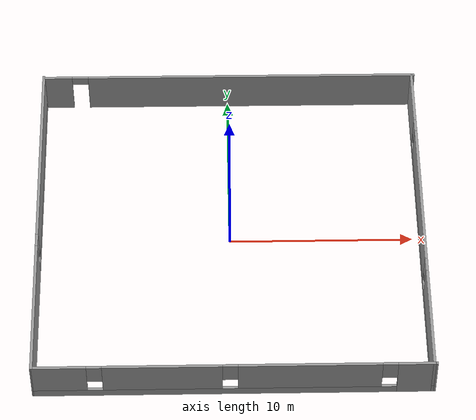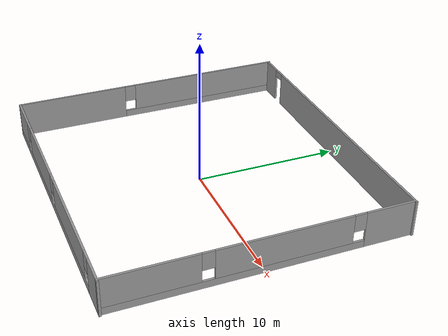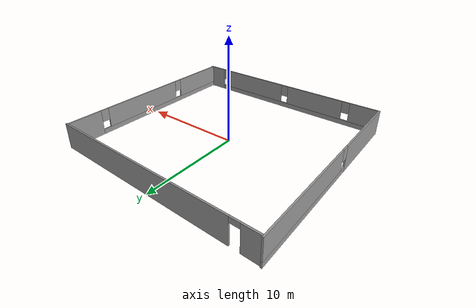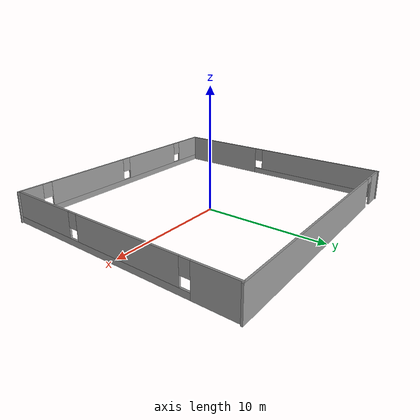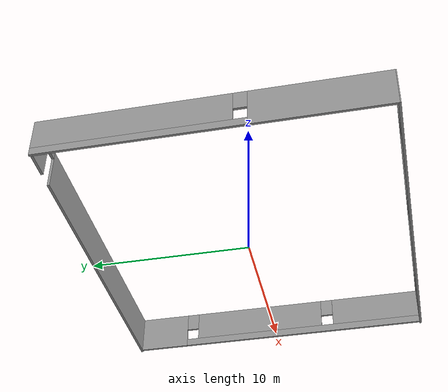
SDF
<?xml version='1.0'?>
<sdf version='1.7'>
  <model name='Mur_smart_resto'>
    <pose>0.070005 0.051909 0 0 -0 0</pose>
    <link name='Wall_10'>
      <pose>-10.4753 0.025889 0 0 -0 1.57063</pose>
      <visual name='Wall_10_Visual_0'>
        <pose>-6.06646 0 1.25 0 -0 0</pose>
        <geometry>
          <box>
            <size>7.99946 0.15 2.5</size>
          </box>
        </geometry>
        <material>
          <script>
            <uri>file://media/materials/scripts/gazebo.material</uri>
            <name>Gazebo/Grey</name>
          </script>
          <ambient>1 1 1 1</ambient>
        </material>
        <meta>
          <layer>0</layer>
        </meta>
      </visual>
      <collision name='Wall_10_Collision_0'>
        <geometry>
          <box>
            <size>7.99946 0.15 2.5</size>
          </box>
        </geometry>
        <pose>-6.06646 0 1.25 0 -0 0</pose>
      </collision>
      <visual name='Wall_10_Visual_1'>
        <pose>3.99973 0 0.25 0 -0 0</pose>
        <geometry>
          <box>
            <size>12.1329 0.15 0.5</size>
          </box>
        </geometry>
        <material>
          <script>
            <uri>file://media/materials/scripts/gazebo.material</uri>
            <name>Gazebo/Grey</name>
          </script>
          <ambient>1 1 1 1</ambient>
        </material>
        <meta>
          <layer>0</layer>
        </meta>
      </visual>
      <collision name='Wall_10_Collision_1'>
        <geometry>
          <box>
            <size>12.1329 0.15 0.5</size>
          </box>
        </geometry>
        <pose>3.99973 0 0.25 0 -0 0</pose>
      </collision>
      <visual name='Wall_10_Visual_2'>
        <pose>4.39973 0 1.5 0 -0 0</pose>
        <geometry>
          <box>
            <size>11.3329 0.15 2</size>
          </box>
        </geometry>
        <material>
          <script>
            <uri>file://media/materials/scripts/gazebo.material</uri>
            <name>Gazebo/Grey</name>
          </script>
          <ambient>1 1 1 1</ambient>
        </material>
        <meta>
          <layer>0</layer>
        </meta>
      </visual>
      <collision name='Wall_10_Collision_2'>
        <geometry>
          <box>
            <size>11.3329 0.15 2</size>
          </box>
        </geometry>
        <pose>4.39973 0 1.5 0 -0 0</pose>
      </collision>
      <visual name='Wall_10_Visual_3'>
        <pose>-1.66672 0 1.9 0 -0 0</pose>
        <geometry>
          <box>
            <size>0.8 0.15 1.2</size>
          </box>
        </geometry>
        <material>
          <script>
            <uri>file://media/materials/scripts/gazebo.material</uri>
            <name>Gazebo/Grey</name>
          </script>
          <ambient>1 1 1 1</ambient>
        </material>
        <meta>
          <layer>0</layer>
        </meta>
      </visual>
      <collision name='Wall_10_Collision_3'>
        <geometry>
          <box>
            <size>0.8 0.15 1.2</size>
          </box>
        </geometry>
        <pose>-1.66672 0 1.9 0 -0 0</pose>
      </collision>
    </link>
    <link name='Wall_7'>
      <pose>0.062174 9.88656 0 0 -0 -0.005133</pose>
      <visual name='Wall_7_Visual_0'>
        <pose>-9.71026 0 1.25 0 -0 0</pose>
        <geometry>
          <box>
            <size>1.55886 0.15 2.5</size>
          </box>
        </geometry>
        <material>
          <script>
            <uri>file://media/materials/scripts/gazebo.material</uri>
            <name>Gazebo/Grey</name>
          </script>
          <ambient>1 1 1 1</ambient>
        </material>
        <meta>
          <layer>0</layer>
        </meta>
      </visual>
      <collision name='Wall_7_Collision_0'>
        <geometry>
          <box>
            <size>1.55886 0.15 2.5</size>
          </box>
        </geometry>
        <pose>-9.71026 0 1.25 0 -0 0</pose>
      </collision>
      <visual name='Wall_7_Visual_1'>
        <pose>1.22943 0 1.25 0 -0 0</pose>
        <geometry>
          <box>
            <size>18.5205 0.15 2.5</size>
          </box>
        </geometry>
        <material>
          <script>
            <uri>file://media/materials/scripts/gazebo.material</uri>
            <name>Gazebo/Grey</name>
          </script>
          <ambient>1 1 1 1</ambient>
        </material>
        <meta>
          <layer>0</layer>
        </meta>
      </visual>
      <collision name='Wall_7_Collision_1'>
        <geometry>
          <box>
            <size>18.5205 0.15 2.5</size>
          </box>
        </geometry>
        <pose>1.22943 0 1.25 0 -0 0</pose>
      </collision>
      <visual name='Wall_7_Visual_2'>
        <pose>-8.48083 0 2.25 0 -0 0</pose>
        <geometry>
          <box>
            <size>0.9 0.15 0.5</size>
          </box>
        </geometry>
        <material>
          <script>
            <uri>file://media/materials/scripts/gazebo.material</uri>
            <name>Gazebo/Grey</name>
          </script>
          <ambient>1 1 1 1</ambient>
        </material>
        <meta>
          <layer>0</layer>
        </meta>
      </visual>
      <collision name='Wall_7_Collision_2'>
        <geometry>
          <box>
            <size>0.9 0.15 0.5</size>
          </box>
        </geometry>
        <pose>-8.48083 0 2.25 0 -0 0</pose>
      </collision>
    </link>
    <link name='Wall_8'>
      <pose>10.3709 -0.091904 0 0 -0 -1.5708</pose>
      <visual name='Wall_8_Visual_0'>
        <pose>-8.27842 0 1.25 0 -0 0</pose>
        <geometry>
          <box>
            <size>3.44316 0.15 2.5</size>
          </box>
        </geometry>
        <material>
          <script>
            <uri>file://media/materials/scripts/gazebo.material</uri>
            <name>Gazebo/Grey</name>
          </script>
          <ambient>1 1 1 1</ambient>
        </material>
        <meta>
          <layer>0</layer>
        </meta>
      </visual>
      <collision name='Wall_8_Collision_0'>
        <geometry>
          <box>
            <size>3.44316 0.15 2.5</size>
          </box>
        </geometry>
        <pose>-8.27842 0 1.25 0 -0 0</pose>
      </collision>
      <visual name='Wall_8_Visual_1'>
        <pose>1.72158 0 0.25 0 -0 0</pose>
        <geometry>
          <box>
            <size>16.5568 0.15 0.5</size>
          </box>
        </geometry>
        <material>
          <script>
            <uri>file://media/materials/scripts/gazebo.material</uri>
            <name>Gazebo/Grey</name>
          </script>
          <ambient>1 1 1 1</ambient>
        </material>
        <meta>
          <layer>0</layer>
        </meta>
      </visual>
      <collision name='Wall_8_Collision_1'>
        <geometry>
          <box>
            <size>16.5568 0.15 0.5</size>
          </box>
        </geometry>
        <pose>1.72158 0 0.25 0 -0 0</pose>
      </collision>
      <visual name='Wall_8_Visual_2'>
        <pose>-1.31032 0 1.5 0 -0 0</pose>
        <geometry>
          <box>
            <size>8.89304 0.15 2</size>
          </box>
        </geometry>
        <material>
          <script>
            <uri>file://media/materials/scripts/gazebo.material</uri>
            <name>Gazebo/Grey</name>
          </script>
          <ambient>1 1 1 1</ambient>
        </material>
        <meta>
          <layer>0</layer>
        </meta>
      </visual>
      <collision name='Wall_8_Collision_2'>
        <geometry>
          <box>
            <size>8.89304 0.15 2</size>
          </box>
        </geometry>
        <pose>-1.31032 0 1.5 0 -0 0</pose>
      </collision>
      <visual name='Wall_8_Visual_3'>
        <pose>6.9681 0 1.5 0 -0 0</pose>
        <geometry>
          <box>
            <size>6.06379 0.15 2</size>
          </box>
        </geometry>
        <material>
          <script>
            <uri>file://media/materials/scripts/gazebo.material</uri>
            <name>Gazebo/Grey</name>
          </script>
          <ambient>1 1 1 1</ambient>
        </material>
        <meta>
          <layer>0</layer>
        </meta>
      </visual>
      <collision name='Wall_8_Collision_3'>
        <geometry>
          <box>
            <size>6.06379 0.15 2</size>
          </box>
        </geometry>
        <pose>6.9681 0 1.5 0 -0 0</pose>
      </collision>
      <visual name='Wall_8_Visual_4'>
        <pose>-6.15684 0 1.9 0 -0 0</pose>
        <geometry>
          <box>
            <size>0.8 0.15 1.2</size>
          </box>
        </geometry>
        <material>
          <script>
            <uri>file://media/materials/scripts/gazebo.material</uri>
            <name>Gazebo/Grey</name>
          </script>
          <ambient>1 1 1 1</ambient>
        </material>
        <meta>
          <layer>0</layer>
        </meta>
      </visual>
      <collision name='Wall_8_Collision_4'>
        <geometry>
          <box>
            <size>0.8 0.15 1.2</size>
          </box>
        </geometry>
        <pose>-6.15684 0 1.9 0 -0 0</pose>
      </collision>
      <visual name='Wall_8_Visual_5'>
        <pose>3.53621 0 1.9 0 -0 0</pose>
        <geometry>
          <box>
            <size>0.8 0.15 1.2</size>
          </box>
        </geometry>
        <material>
          <script>
            <uri>file://media/materials/scripts/gazebo.material</uri>
            <name>Gazebo/Grey</name>
          </script>
          <ambient>1 1 1 1</ambient>
        </material>
        <meta>
          <layer>0</layer>
        </meta>
      </visual>
      <collision name='Wall_8_Collision_5'>
        <geometry>
          <box>
            <size>0.8 0.15 1.2</size>
          </box>
        </geometry>
        <pose>3.53621 0 1.9 0 -0 0</pose>
      </collision>
    </link>
    <link name='Wall_9'>
      <pose>-9.8e-05 -9.9911 0 0 -0 3.13913</pose>
      <visual name='Wall_9_Visual_0'>
        <pose>-9.52605 0 1.25 0 -0 0</pose>
        <geometry>
          <box>
            <size>2.05161 0.15 2.5</size>
          </box>
        </geometry>
        <material>
          <script>
            <uri>file://media/materials/scripts/gazebo.material</uri>
            <name>Gazebo/Grey</name>
          </script>
          <ambient>1 1 1 1</ambient>
        </material>
        <meta>
          <layer>0</layer>
        </meta>
      </visual>
      <collision name='Wall_9_Collision_0'>
        <geometry>
          <box>
            <size>2.05161 0.15 2.5</size>
          </box>
        </geometry>
        <pose>-9.52605 0 1.25 0 -0 0</pose>
      </collision>
      <visual name='Wall_9_Visual_1'>
        <pose>1.02581 0 0.25 0 -0 0</pose>
        <geometry>
          <box>
            <size>19.0521 0.15 0.5</size>
          </box>
        </geometry>
        <material>
          <script>
            <uri>file://media/materials/scripts/gazebo.material</uri>
            <name>Gazebo/Grey</name>
          </script>
          <ambient>1 1 1 1</ambient>
        </material>
        <meta>
          <layer>0</layer>
        </meta>
      </visual>
      <collision name='Wall_9_Collision_1'>
        <geometry>
          <box>
            <size>19.0521 0.15 0.5</size>
          </box>
        </geometry>
        <pose>1.02581 0 0.25 0 -0 0</pose>
      </collision>
      <visual name='Wall_9_Visual_2'>
        <pose>-3.95634 0 1.5 0 -0 0</pose>
        <geometry>
          <box>
            <size>7.48782 0.15 2</size>
          </box>
        </geometry>
        <material>
          <script>
            <uri>file://media/materials/scripts/gazebo.material</uri>
            <name>Gazebo/Grey</name>
          </script>
          <ambient>1 1 1 1</ambient>
        </material>
        <meta>
          <layer>0</layer>
        </meta>
      </visual>
      <collision name='Wall_9_Collision_2'>
        <geometry>
          <box>
            <size>7.48782 0.15 2</size>
          </box>
        </geometry>
        <pose>-3.95634 0 1.5 0 -0 0</pose>
      </collision>
      <visual name='Wall_9_Visual_3'>
        <pose>3.71414 0 1.5 0 -0 0</pose>
        <geometry>
          <box>
            <size>6.25314 0.15 2</size>
          </box>
        </geometry>
        <material>
          <script>
            <uri>file://media/materials/scripts/gazebo.material</uri>
            <name>Gazebo/Grey</name>
          </script>
          <ambient>1 1 1 1</ambient>
        </material>
        <meta>
          <layer>0</layer>
        </meta>
      </visual>
      <collision name='Wall_9_Collision_3'>
        <geometry>
          <box>
            <size>6.25314 0.15 2</size>
          </box>
        </geometry>
        <pose>3.71414 0 1.5 0 -0 0</pose>
      </collision>
      <visual name='Wall_9_Visual_4'>
        <pose>9.09628 0 1.5 0 -0 0</pose>
        <geometry>
          <box>
            <size>2.91115 0.15 2</size>
          </box>
        </geometry>
        <material>
          <script>
            <uri>file://media/materials/scripts/gazebo.material</uri>
            <name>Gazebo/Grey</name>
          </script>
          <ambient>1 1 1 1</ambient>
        </material>
        <meta>
          <layer>0</layer>
        </meta>
      </visual>
      <collision name='Wall_9_Collision_4'>
        <geometry>
          <box>
            <size>2.91115 0.15 2</size>
          </box>
        </geometry>
        <pose>9.09628 0 1.5 0 -0 0</pose>
      </collision>
      <visual name='Wall_9_Visual_5'>
        <pose>-8.10025 0 1.9 0 -0 0</pose>
        <geometry>
          <box>
            <size>0.8 0.15 1.2</size>
          </box>
        </geometry>
        <material>
          <script>
            <uri>file://media/materials/scripts/gazebo.material</uri>
            <name>Gazebo/Grey</name>
          </script>
          <ambient>1 1 1 1</ambient>
        </material>
        <meta>
          <layer>0</layer>
        </meta>
      </visual>
      <collision name='Wall_9_Collision_5'>
        <geometry>
          <box>
            <size>0.8 0.15 1.2</size>
          </box>
        </geometry>
        <pose>-8.10025 0 1.9 0 -0 0</pose>
      </collision>
      <visual name='Wall_9_Visual_6'>
        <pose>0.187568 0 1.9 0 -0 0</pose>
        <geometry>
          <box>
            <size>0.8 0.15 1.2</size>
          </box>
        </geometry>
        <material>
          <script>
            <uri>file://media/materials/scripts/gazebo.material</uri>
            <name>Gazebo/Grey</name>
          </script>
          <ambient>1 1 1 1</ambient>
        </material>
        <meta>
          <layer>0</layer>
        </meta>
      </visual>
      <collision name='Wall_9_Collision_6'>
        <geometry>
          <box>
            <size>0.8 0.15 1.2</size>
          </box>
        </geometry>
        <pose>0.187568 0 1.9 0 -0 0</pose>
      </collision>
      <visual name='Wall_9_Visual_7'>
        <pose>7.24071 0 1.9 0 -0 0</pose>
        <geometry>
          <box>
            <size>0.8 0.15 1.2</size>
          </box>
        </geometry>
        <material>
          <script>
            <uri>file://media/materials/scripts/gazebo.material</uri>
            <name>Gazebo/Grey</name>
          </script>
          <ambient>1 1 1 1</ambient>
        </material>
        <meta>
          <layer>0</layer>
        </meta>
      </visual>
      <collision name='Wall_9_Collision_7'>
        <geometry>
          <box>
            <size>0.8 0.15 1.2</size>
          </box>
        </geometry>
        <pose>7.24071 0 1.9 0 -0 0</pose>
      </collision>
    </link>
    <static>1</static>
  </model>
</sdf>
